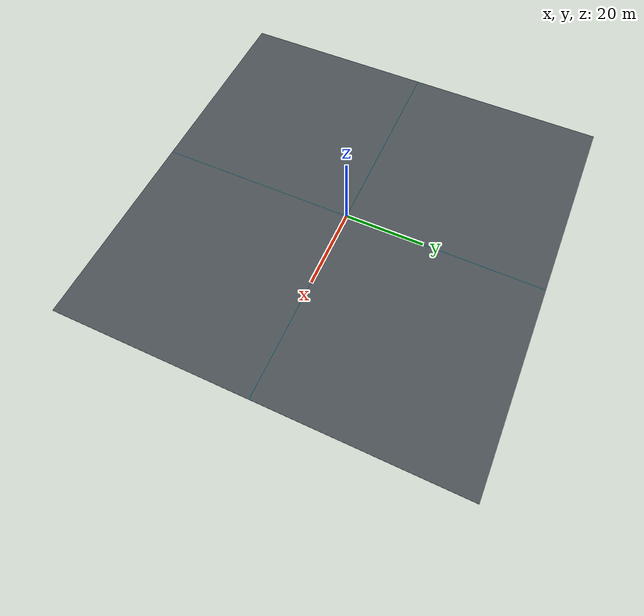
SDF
<?xml version="1.0"?>
<sdf version="1.9">
  <world name="inventory_warehouse">
    <physics name="1ms" type="ignored"><max_step_size>0.001</max_step_size><real_time_factor>1.0</real_time_factor></physics>
    <plugin filename="gz-sim-physics-system" name="gz::sim::systems::Physics"/>
    <plugin filename="gz-sim-user-commands-system" name="gz::sim::systems::UserCommands"/>
    <plugin filename="gz-sim-scene-broadcaster-system" name="gz::sim::systems::SceneBroadcaster"/>
    <plugin filename="gz-sim-sensors-system" name="gz::sim::systems::Sensors"><render_engine>ogre2</render_engine></plugin>
    <light name="sun" type="directional"><cast_shadows>true</cast_shadows><pose>0 0 10 0 0 0</pose><diffuse>0.8 0.8 0.8 1</diffuse><specular>0.2 0.2 0.2 1</specular><direction>-0.5 0.1 -0.9</direction></light>
    <model name="warehouse_floor"><static>true</static><pose>0 0 -0.05 0 0 0</pose><link name="floor"><collision name="collision"><geometry><box><size>100 100 0.1</size></box></geometry></collision><visual name="visual"><geometry><box><size>100 100 0.1</size></box></geometry><material><ambient>0.28 0.30 0.32 1</ambient><diffuse>0.28 0.30 0.32 1</diffuse></material></visual></link></model>
    <model name="center_x_line"><static>true</static><pose>0 0 0.002 0 0 0</pose><link name="line"><visual name="v"><geometry><box><size>0.08 100 0.004</size></box></geometry><material><ambient>0 0.8 1 1</ambient><diffuse>0 0.8 1 1</diffuse></material></visual></link></model>
    <model name="center_y_line"><static>true</static><pose>0 0 0.002 0 0 0</pose><link name="line"><visual name="v"><geometry><box><size>100 0.08 0.004</size></box></geometry><material><ambient>0 0.8 1 1</ambient><diffuse>0 0.8 1 1</diffuse></material></visual></link></model>
  </world>
</sdf>
